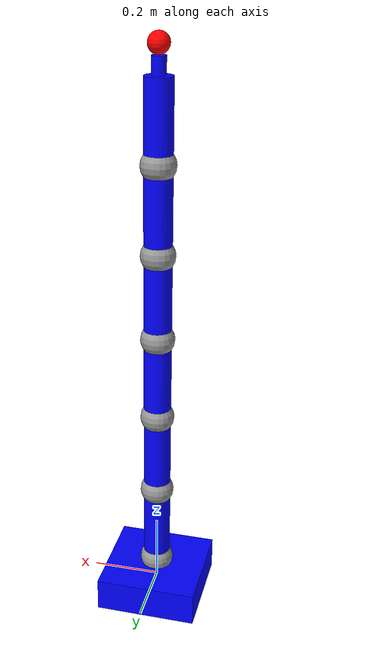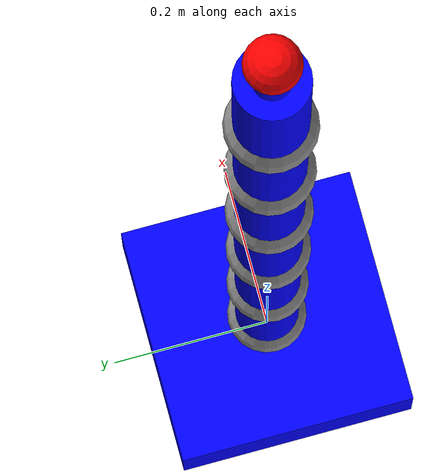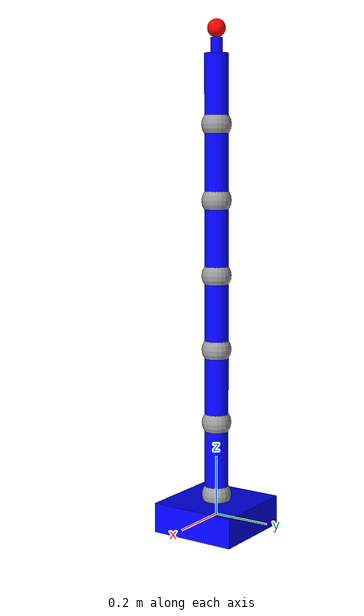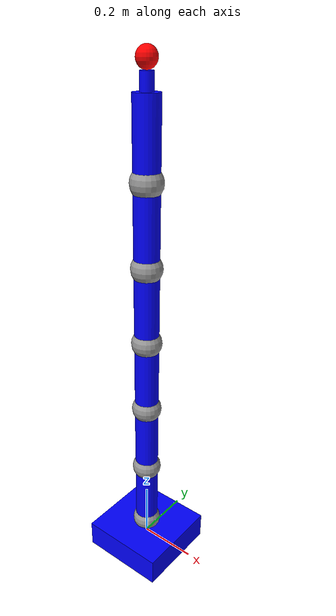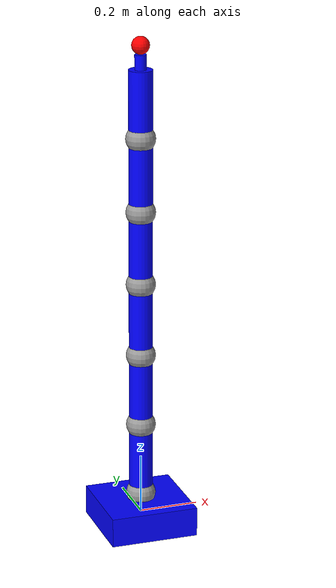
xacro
<?xml version="1.0"?>
<robot xmlns:xacro="http://www.ros.org/wiki/xacro" name="myArm6DOF">
    <xacro:arg name="initial_positions_file" default="initial_positions.yaml" />

    <!-- Import myArm6DOF urdf file -->
    <xacro:include filename="$(find my_jointed_robot)/urdf/my_jointed_robot.urdf" />

    <!-- Import control_xacro -->
    <xacro:include filename="myArm6DOF.ros2_control.xacro" />

    <!-- xacro:myArm6DOF_ros2_control name="FakeSystem" initial_positions_file="$(arg initial_positions_file)"/-->

</robot>

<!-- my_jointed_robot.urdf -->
<robot name="myArm6DOF">

  <!-- Base Link -->
  <link name="base_link">
    <visual>
      <geometry>
        <box size="0.3 0.3 0.1"/>
      </geometry>
      <material name="blue">
        <color rgba="0 0 1 1"/>
      </material>
    </visual>
    <collision>
      <geometry>
        <box size="0.3 0.3 0.1"/>
      </geometry>
    </collision>
  </link>

  <!-- Pivots and Links -->
  <!-- Repeat pivot-link pairs for each DOF -->

  <link name="pivot_1">
    <visual>
      <geometry>
        <sphere radius="0.05"/>
      </geometry>
      <material name="grey">
        <color rgba="0.6 0.6 0.6 1"/>
      </material>
      <origin xyz="0 0 0.02" rpy="0 0 0"/>
    </visual>
    <collision>
      <geometry>
        <sphere radius="0.05"/>
      </geometry>
      <origin xyz="0 0 0.02" rpy="0 0 0"/>
    </collision>
  </link>

  <link name="link_1">
    <visual>
      <geometry>
        <cylinder length="0.25" radius="0.04"/>
      </geometry>
      <material name="blue">
        <color rgba="0 0 1 1"/>
      </material>
      <origin xyz="0 0 0.125" rpy="0 0 0"/>
    </visual>
    <collision>
      <geometry>
        <cylinder length="0.25" radius="0.04"/>
      </geometry>
      <origin xyz="0 0 0.125" rpy="0 0 0"/>
    </collision>
  </link>

  <link name="pivot_2">
    <visual>
      <geometry>
        <sphere radius="0.05"/>
      </geometry>
      <material name="grey">
        <color rgba="0.6 0.6 0.6 1"/>
      </material>
      <origin xyz="0 0 0.02" rpy="0 0 0"/>
    </visual>
    <collision>
      <geometry>
        <sphere radius="0.05"/>
      </geometry>
      <origin xyz="0 0 0.02" rpy="0 0 0"/>
    </collision>
  </link>

  <link name="link_2">
    <visual>
      <geometry>
        <cylinder length="0.25" radius="0.04"/>
      </geometry>
      <material name="blue">
        <color rgba="0 0 1 1"/>
      </material>
      <origin xyz="0 0 0.125" rpy="0 0 0"/>
    </visual>
    <collision>
      <geometry>
        <cylinder length="0.25" radius="0.04"/>
      </geometry>
      <origin xyz="0 0 0.125" rpy="0 0 0"/>
    </collision>
  </link>

  <link name="pivot_3">
    <visual>
      <geometry>
        <sphere radius="0.05"/>
      </geometry>
      <material name="grey">
        <color rgba="0.6 0.6 0.6 1"/>
      </material>
      <origin xyz="0 0 0.02" rpy="0 0 0"/>
    </visual>
    <collision>
      <geometry>
        <sphere radius="0.05"/>
      </geometry>
      <origin xyz="0 0 0.02" rpy="0 0 0"/>
    </collision>
  </link>

  <link name="link_3">
    <visual>
      <geometry>
        <cylinder length="0.25" radius="0.04"/>
      </geometry>
      <material name="blue">
        <color rgba="0 0 1 1"/>
      </material>
      <origin xyz="0 0 0.125" rpy="0 0 0"/>
    </visual>
    <collision>
      <geometry>
        <cylinder length="0.25" radius="0.04"/>
      </geometry>
      <origin xyz="0 0 0.125" rpy="0 0 0"/>
    </collision>
  </link>

  <link name="pivot_4">
    <visual>
      <geometry>
        <sphere radius="0.05"/>
      </geometry>
      <material name="grey">
        <color rgba="0.6 0.6 0.6 1"/>
      </material>
      <origin xyz="0 0 0.02" rpy="0 0 0"/>
    </visual>
    <collision>
      <geometry>
        <sphere radius="0.05"/>
      </geometry>
      <origin xyz="0 0 0.02" rpy="0 0 0"/>
    </collision>
  </link>

  <link name="link_4">
    <visual>
      <geometry>
        <cylinder length="0.25" radius="0.04"/>
      </geometry>
      <material name="blue">
        <color rgba="0 0 1 1"/>
      </material>
      <origin xyz="0 0 0.125" rpy="0 0 0"/>
    </visual>
    <collision>
      <geometry>
        <cylinder length="0.25" radius="0.04"/>
      </geometry>
      <origin xyz="0 0 0.125" rpy="0 0 0"/>
    </collision>
  </link>

  <link name="pivot_5">
    <visual>
      <geometry>
        <sphere radius="0.05"/>
      </geometry>
      <material name="grey">
        <color rgba="0.6 0.6 0.6 1"/>
      </material>
      <origin xyz="0 0 0.02" rpy="0 0 0"/>
    </visual>
    <collision>
      <geometry>
        <sphere radius="0.05"/>
      </geometry>
      <origin xyz="0 0 0.02" rpy="0 0 0"/>
    </collision>
  </link>

  <link name="link_5">
    <visual>
      <geometry>
        <cylinder length="0.25" radius="0.04"/>
      </geometry>
      <material name="blue">
        <color rgba="0 0 1 1"/>
      </material>
      <origin xyz="0 0 0.125" rpy="0 0 0"/>
    </visual>
    <collision>
      <geometry>
        <cylinder length="0.25" radius="0.04"/>
      </geometry>
      <origin xyz="0 0 0.125" rpy="0 0 0"/>
    </collision>
  </link>

  <link name="pivot_6">
    <visual>
      <geometry>
        <sphere radius="0.05"/>
      </geometry>
      <material name="grey">
        <color rgba="0.6 0.6 0.6 1"/>
      </material>
      <origin xyz="0 0 0.02" rpy="0 0 0"/>
    </visual>
    <collision>
      <geometry>
        <sphere radius="0.05"/>
      </geometry>
      <origin xyz="0 0 0.02" rpy="0 0 0"/>
    </collision>
  </link>

  <link name="link_6">
    <visual>
      <geometry>
        <cylinder length="0.25" radius="0.04"/>
      </geometry>
      <material name="blue">
        <color rgba="0 0 1 1"/>
      </material>
      <origin xyz="0 0 0.125" rpy="0 0 0"/>
    </visual>
    <collision>
      <geometry>
        <cylinder length="0.25" radius="0.04"/>
      </geometry>
      <origin xyz="0 0 0.125" rpy="0 0 0"/>
    </collision>
  </link>

  <link name="link_7">
    <visual>
      <geometry>
        <cylinder length="0.05" radius="0.02"/>
      </geometry>
      <material name="blue">
        <color rgba="0 0 1 1"/>
      </material>
      <origin xyz="0 0 0.025" rpy="0 0 0"/>
    </visual>
    <collision>
      <geometry>
        <cylinder length="0.05" radius="0.02"/>
      </geometry>
      <origin xyz="0 0 0.025" rpy="0 0 0"/>
    </collision>
  </link>

  <link name="pivot_7">
    <visual>
      <geometry>
        <sphere radius="0.03"/>
      </geometry>
      <material name="red">
        <color rgba="1 0 0 1"/>
      </material>
      <origin xyz="0 0 0.03" rpy="0 0 0"/>
    </visual>
    <collision>
      <geometry>
        <sphere radius="0.03"/>
      </geometry>
      <origin xyz="0 0 0.03" rpy="0 0 0"/>
    </collision>
  </link>

  <!-- JOINTS -->
  <joint name="joint_1" type="revolute">
    <parent link="base_link"/>
    <child link="pivot_1"/>
    <origin xyz="0 0 0.05" rpy="0 0 0"/>
    <axis xyz="0 0 1"/>
    <limit lower="-3.14" upper="3.14" effort="5" velocity="1.0"/>
  </joint>

  <joint name="joint_2" type="fixed">
    <parent link="pivot_1"/>
    <child link="link_1"/>
  </joint>

  <joint name="joint_3" type="revolute">
    <parent link="link_1"/>
    <child link="pivot_2"/>
    <origin xyz="0 0 0.25" rpy="0 0 0"/>
    <axis xyz="0 1 0"/>
    <limit lower="-3.14" upper="3.14" effort="5" velocity="1.0"/>
  </joint>

  <joint name="joint_4" type="fixed">
    <parent link="pivot_2"/>
    <child link="link_2"/>
  </joint>

  <joint name="joint_5" type="revolute">
    <parent link="link_2"/>
    <child link="pivot_3"/>
    <origin xyz="0 0 0.25" rpy="0 0 0"/>
    <axis xyz="0 1 0"/>
    <limit lower="-3.14" upper="3.14" effort="5" velocity="1.0"/>
  </joint>

  <joint name="joint_6" type="fixed">
    <parent link="pivot_3"/>
    <child link="link_3"/>
  </joint>

  <joint name="joint_7" type="revolute">
    <parent link="link_3"/>
    <child link="pivot_4"/>
    <origin xyz="0 0 0.25" rpy="0 0 0"/>
    <axis xyz="1 0 0"/>
    <limit lower="-3.14" upper="3.14" effort="5" velocity="1.0"/>
  </joint>

  <joint name="joint_8" type="fixed">
    <parent link="pivot_4"/>
    <child link="link_4"/>
  </joint>

  <joint name="joint_9" type="revolute">
    <parent link="link_4"/>
    <child link="pivot_5"/>
    <origin xyz="0 0 0.25" rpy="0 0 0"/>
    <axis xyz="0 1 0"/>
    <limit lower="-3.14" upper="3.14" effort="5" velocity="1.0"/>
  </joint>

  <joint name="joint_10" type="fixed">
    <parent link="pivot_5"/>
    <child link="link_5"/>
  </joint>

  <joint name="joint_11" type="revolute">
    <parent link="link_5"/>
    <child link="pivot_6"/>
    <origin xyz="0 0 0.25" rpy="0 0 0"/>
    <axis xyz="1 0 0"/>
    <limit lower="-3.14" upper="3.14" effort="5" velocity="1.0"/>
  </joint>

  <joint name="joint_12" type="fixed">
    <parent link="pivot_6"/>
    <child link="link_6"/>
  </joint>

  <joint name="joint_13" type="revolute">
    <parent link="link_6"/>
    <child link="link_7"/>
    <origin xyz="0 0 0.25" rpy="0 0 0"/>
    <axis xyz="0 0 1"/>
    <limit lower="-3.14" upper="3.14" effort="5" velocity="1.0"/>
  </joint>

  <joint name="joint_14" type="fixed">
    <parent link="link_7"/>
    <child link="pivot_7"/>
    <origin xyz="0 0 0.05" rpy="0 0 0"/>
  </joint>

  <ros2_control name="MyArmHardware" type="system">
    <hardware>
      <plugin>mock_components/GenericSystem</plugin>
    </hardware>

    <joint name="joint_1">
      <command_interface name="position"/>
      <state_interface name="position"/>
      <state_interface name="velocity"/>
    </joint>

    <joint name="joint_3">
      <command_interface name="position"/>
      <state_interface name="position"/>
      <state_interface name="velocity"/>
    </joint>

    <joint name="joint_5">
      <command_interface name="position"/>
      <state_interface name="position"/>
      <state_interface name="velocity"/>
    </joint>

    <joint name="joint_7">
      <command_interface name="position"/>
      <state_interface name="position"/>
      <state_interface name="velocity"/>
    </joint>

    <joint name="joint_9">
      <command_interface name="position"/>
      <state_interface name="position"/>
      <state_interface name="velocity"/>
    </joint>

    <joint name="joint_11">
      <command_interface name="position"/>
      <state_interface name="position"/>
      <state_interface name="velocity"/>
    </joint>

    <joint name="joint_13">
      <command_interface name="position"/>
      <state_interface name="position"/>
      <state_interface name="velocity"/>
     </joint>
   </ros2_control>

</robot>
